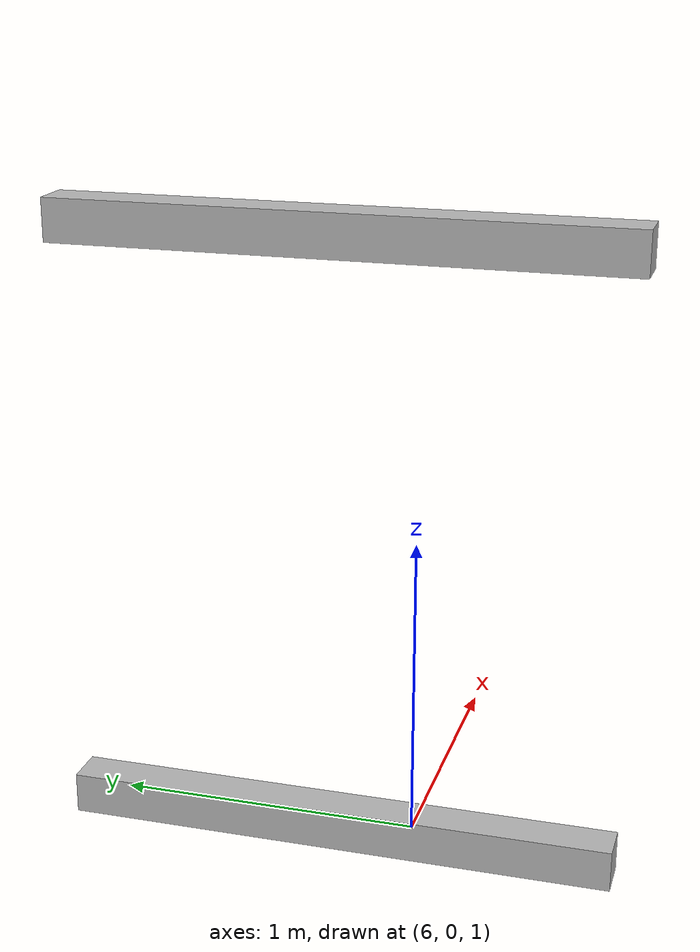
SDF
<sdf version="1.7">
 <world name="default">
  <model name="orthogonal_747_2.000.15_TS">
   <static>1</static>
   <link name="y_link_1_2_6">
    <inertial>
     <mass>1</mass>
     <inertia>
      <ixx>0.166667</ixx>
      <ixy>0</ixy>
      <ixz>0</ixz>
      <iyy>0.166667</iyy>
      <iyz>0</iyz>
      <izz>0.166667</izz>
     </inertia>
    </inertial>
    <pose>12.9 5.375 3.225 0 -0 0</pose>
    <visual name="visual_0">
     <laser_retro>1282</laser_retro>
     <geometry><box><size>0.15 1e-06 0.15</size></box></geometry>
     <material>
      <script><name>Gazebo/Grey</name><uri>file://media/materials/scripts/gazebo.material</uri></script>
      <shader type="pixel"><normal_map>__default__</normal_map></shader>
      <ambient>0.678 0.498 0.659 1</ambient>
      <diffuse>0.7 0.7 0.7 1</diffuse>
      <specular>0.01 0.01 0.01 1</specular>
      <emissive>0 0 0 1</emissive>
     </material>
     <pose>0 -1 0 0 -0 0</pose>
     <transparency>1</transparency>
    </visual>
    <visual name="visual_1">
     <laser_retro>1283</laser_retro>
     <geometry><box><size>0.15 1e-06 0.15</size></box></geometry>
     <material>
      <script><name>Gazebo/Grey</name><uri>file://media/materials/scripts/gazebo.material</uri></script>
      <shader type="pixel"><normal_map>__default__</normal_map></shader>
      <ambient>0.447 0.624 0.812 1</ambient>
      <diffuse>0.7 0.7 0.7 1</diffuse>
      <specular>0.01 0.01 0.01 1</specular>
      <emissive>0 0 0 1</emissive>
     </material>
     <pose>0 1 0 0 -0 0</pose>
     <transparency>1</transparency>
    </visual>
    <visual name="visual_2">
     <laser_retro>1284</laser_retro>
     <geometry><box><size>0.15 2 1e-06</size></box></geometry>
     <material>
      <script><name>Gazebo/Grey</name><uri>file://media/materials/scripts/gazebo.material</uri></script>
      <shader type="pixel"><normal_map>__default__</normal_map></shader>
      <ambient>0.988 0.686 0.243 1</ambient>
      <diffuse>0.7 0.7 0.7 1</diffuse>
      <specular>0.01 0.01 0.01 1</specular>
      <emissive>0 0 0 1</emissive>
     </material>
     <pose>0 0 -0.075 0 -0 0</pose>
     <transparency>1</transparency>
    </visual>
    <visual name="visual_3">
     <laser_retro>1285</laser_retro>
     <geometry><box><size>1e-06 2 0.15</size></box></geometry>
     <material>
      <script><name>Gazebo/Grey</name><uri>file://media/materials/scripts/gazebo.material</uri></script>
      <shader type="pixel"><normal_map>__default__</normal_map></shader>
      <ambient>0.988 0.914 0.31 1</ambient>
      <diffuse>0.7 0.7 0.7 1</diffuse>
      <specular>0.01 0.01 0.01 1</specular>
      <emissive>0 0 0 1</emissive>
     </material>
     <pose>0.075 0 0 0 -0 0</pose>
     <transparency>1</transparency>
    </visual>
    <visual name="visual_4">
     <laser_retro>1286</laser_retro>
     <geometry><box><size>0.15 2 1e-06</size></box></geometry>
     <material>
      <script><name>Gazebo/Grey</name><uri>file://media/materials/scripts/gazebo.material</uri></script>
      <shader type="pixel"><normal_map>__default__</normal_map></shader>
      <ambient>0.937 0.161 0.161 1</ambient>
      <diffuse>0.7 0.7 0.7 1</diffuse>
      <specular>0.01 0.01 0.01 1</specular>
      <emissive>0 0 0 1</emissive>
     </material>
     <pose>0 0 0.075 0 -0 0</pose>
     <transparency>1</transparency>
    </visual>
    <visual name="visual_5">
     <laser_retro>1287</laser_retro>
     <geometry><box><size>1e-06 2 0.15</size></box></geometry>
     <material>
      <script><name>Gazebo/Grey</name><uri>file://media/materials/scripts/gazebo.material</uri></script>
      <shader type="pixel"><normal_map>__default__</normal_map></shader>
      <ambient>0.541 0.886 0.204 1</ambient>
      <diffuse>0.7 0.7 0.7 1</diffuse>
      <specular>0.01 0.01 0.01 1</specular>
      <emissive>0 0 0 1</emissive>
     </material>
     <pose>-0.075 0 0 0 -0 0</pose>
     <transparency>1</transparency>
    </visual>
    <visual name="visual_texture">
     <geometry><box><size>0.149985 1.9998 0.149985</size></box></geometry>
     <material>
      <script>
       <uri>model://BASE_MODELS/simple_block_v2_textured/materials/scripts</uri>
       <uri>model://BASE_MODELS/simple_block_v2_textured/materials/textures</uri>
       <name>metal</name>
      </script>
     </material>
     <laser_retro>1288</laser_retro>
    </visual>
    <collision name="collision">
     <geometry><box><size>0.15 2 0.15</size></box></geometry>
     <surface>
      <friction>
       <ode><mu>1</mu><mu2>1</mu2><fdir1>0 0 0</fdir1><slip1>0</slip1><slip2>0</slip2></ode>
       <torsional>
        <coefficient>1</coefficient>
        <patch_radius>0</patch_radius>
        <surface_radius>0</surface_radius>
        <use_patch_radius>1</use_patch_radius>
        <ode><slip>0</slip></ode>
       </torsional>
      </friction>
      <bounce><restitution_coefficient>0</restitution_coefficient><threshold>1e+06</threshold></bounce>
      <contact>
       <collide_without_contact>0</collide_without_contact>
       <collide_without_contact_bitmask>1</collide_without_contact_bitmask>
       <collide_bitmask>1</collide_bitmask>
       <ode>
        <soft_cfm>0</soft_cfm>
        <soft_erp>0.2</soft_erp>
        <kp>1e+13</kp>
        <kd>1</kd>
        <max_vel>0.01</max_vel>
        <min_depth>0</min_depth>
       </ode>
       <bullet>
        <split_impulse>1</split_impulse>
        <split_impulse_penetration_threshold>-0.01</split_impulse_penetration_threshold>
        <soft_cfm>0</soft_cfm>
        <soft_erp>0.2</soft_erp>
        <kp>1e+13</kp>
        <kd>1</kd>
       </bullet>
      </contact>
     </surface>
    </collision>
   </link>
   <link name="y_link_2_2_6">
    <inertial>
     <mass>1</mass>
     <inertia>
      <ixx>0.166667</ixx>
      <ixy>0</ixy>
      <ixz>0</ixz>
      <iyy>0.166667</iyy>
      <iyz>0</iyz>
      <izz>0.166667</izz>
     </inertia>
    </inertial>
    <pose>12.9 5.375 5.375 0 -0 0</pose>
    <visual name="visual_0">
     <laser_retro>2185</laser_retro>
     <geometry><box><size>0.15 1e-06 0.15</size></box></geometry>
     <material>
      <script><name>Gazebo/Grey</name><uri>file://media/materials/scripts/gazebo.material</uri></script>
      <shader type="pixel"><normal_map>__default__</normal_map></shader>
      <ambient>0.678 0.498 0.659 1</ambient>
      <diffuse>0.7 0.7 0.7 1</diffuse>
      <specular>0.01 0.01 0.01 1</specular>
      <emissive>0 0 0 1</emissive>
     </material>
     <pose>0 -1 0 0 -0 0</pose>
     <transparency>1</transparency>
    </visual>
    <visual name="visual_1">
     <laser_retro>2186</laser_retro>
     <geometry><box><size>0.15 1e-06 0.15</size></box></geometry>
     <material>
      <script><name>Gazebo/Grey</name><uri>file://media/materials/scripts/gazebo.material</uri></script>
      <shader type="pixel"><normal_map>__default__</normal_map></shader>
      <ambient>0.447 0.624 0.812 1</ambient>
      <diffuse>0.7 0.7 0.7 1</diffuse>
      <specular>0.01 0.01 0.01 1</specular>
      <emissive>0 0 0 1</emissive>
     </material>
     <pose>0 1 0 0 -0 0</pose>
     <transparency>1</transparency>
    </visual>
    <visual name="visual_2">
     <laser_retro>2187</laser_retro>
     <geometry><box><size>0.15 2 1e-06</size></box></geometry>
     <material>
      <script><name>Gazebo/Grey</name><uri>file://media/materials/scripts/gazebo.material</uri></script>
      <shader type="pixel"><normal_map>__default__</normal_map></shader>
      <ambient>0.988 0.686 0.243 1</ambient>
      <diffuse>0.7 0.7 0.7 1</diffuse>
      <specular>0.01 0.01 0.01 1</specular>
      <emissive>0 0 0 1</emissive>
     </material>
     <pose>0 0 -0.075 0 -0 0</pose>
     <transparency>1</transparency>
    </visual>
    <visual name="visual_3">
     <laser_retro>2188</laser_retro>
     <geometry><box><size>1e-06 2 0.15</size></box></geometry>
     <material>
      <script><name>Gazebo/Grey</name><uri>file://media/materials/scripts/gazebo.material</uri></script>
      <shader type="pixel"><normal_map>__default__</normal_map></shader>
      <ambient>0.988 0.914 0.31 1</ambient>
      <diffuse>0.7 0.7 0.7 1</diffuse>
      <specular>0.01 0.01 0.01 1</specular>
      <emissive>0 0 0 1</emissive>
     </material>
     <pose>0.075 0 0 0 -0 0</pose>
     <transparency>1</transparency>
    </visual>
    <visual name="visual_4">
     <laser_retro>2189</laser_retro>
     <geometry><box><size>0.15 2 1e-06</size></box></geometry>
     <material>
      <script><name>Gazebo/Grey</name><uri>file://media/materials/scripts/gazebo.material</uri></script>
      <shader type="pixel"><normal_map>__default__</normal_map></shader>
      <ambient>0.937 0.161 0.161 1</ambient>
      <diffuse>0.7 0.7 0.7 1</diffuse>
      <specular>0.01 0.01 0.01 1</specular>
      <emissive>0 0 0 1</emissive>
     </material>
     <pose>0 0 0.075 0 -0 0</pose>
     <transparency>1</transparency>
    </visual>
    <visual name="visual_5">
     <laser_retro>2190</laser_retro>
     <geometry><box><size>1e-06 2 0.15</size></box></geometry>
     <material>
      <script><name>Gazebo/Grey</name><uri>file://media/materials/scripts/gazebo.material</uri></script>
      <shader type="pixel"><normal_map>__default__</normal_map></shader>
      <ambient>0.541 0.886 0.204 1</ambient>
      <diffuse>0.7 0.7 0.7 1</diffuse>
      <specular>0.01 0.01 0.01 1</specular>
      <emissive>0 0 0 1</emissive>
     </material>
     <pose>-0.075 0 0 0 -0 0</pose>
     <transparency>1</transparency>
    </visual>
    <visual name="visual_texture">
     <geometry><box><size>0.149985 1.9998 0.149985</size></box></geometry>
     <material>
      <script>
       <uri>model://BASE_MODELS/simple_block_v2_textured/materials/scripts</uri>
       <uri>model://BASE_MODELS/simple_block_v2_textured/materials/textures</uri>
       <name>metal</name>
      </script>
     </material>
     <laser_retro>2191</laser_retro>
    </visual>
    <collision name="collision">
     <geometry><box><size>0.15 2 0.15</size></box></geometry>
     <surface>
      <friction>
       <ode><mu>1</mu><mu2>1</mu2><fdir1>0 0 0</fdir1><slip1>0</slip1><slip2>0</slip2></ode>
       <torsional>
        <coefficient>1</coefficient>
        <patch_radius>0</patch_radius>
        <surface_radius>0</surface_radius>
        <use_patch_radius>1</use_patch_radius>
        <ode><slip>0</slip></ode>
       </torsional>
      </friction>
      <bounce><restitution_coefficient>0</restitution_coefficient><threshold>1e+06</threshold></bounce>
      <contact>
       <collide_without_contact>0</collide_without_contact>
       <collide_without_contact_bitmask>1</collide_without_contact_bitmask>
       <collide_bitmask>1</collide_bitmask>
       <ode>
        <soft_cfm>0</soft_cfm>
        <soft_erp>0.2</soft_erp>
        <kp>1e+13</kp>
        <kd>1</kd>
        <max_vel>0.01</max_vel>
        <min_depth>0</min_depth>
       </ode>
       <bullet>
        <split_impulse>1</split_impulse>
        <split_impulse_penetration_threshold>-0.01</split_impulse_penetration_threshold>
        <soft_cfm>0</soft_cfm>
        <soft_erp>0.2</soft_erp>
        <kp>1e+13</kp>
        <kd>1</kd>
       </bullet>
      </contact>
     </surface>
    </collision>
   </link>
   <pose>-6.47624 -5 -2.5 0 -0 0</pose>
  </model>
 </world>
</sdf>
